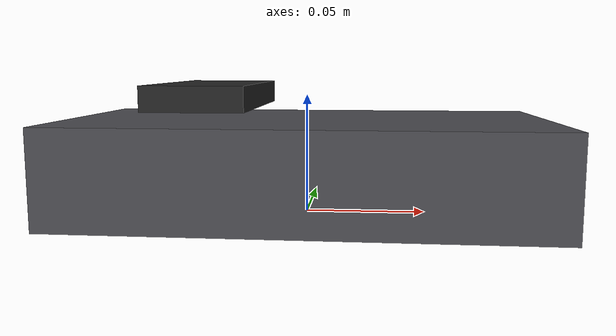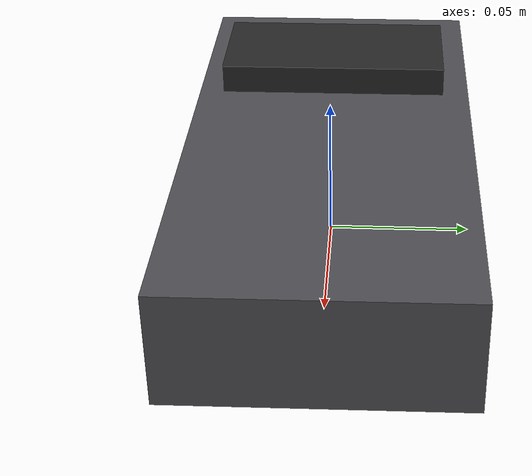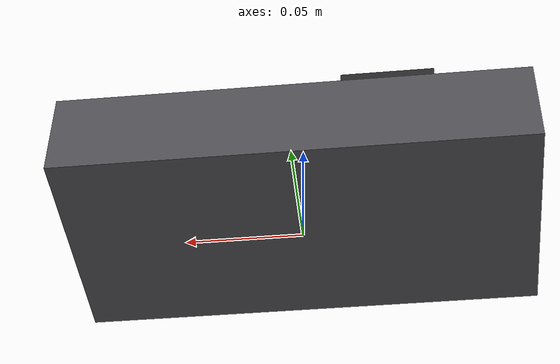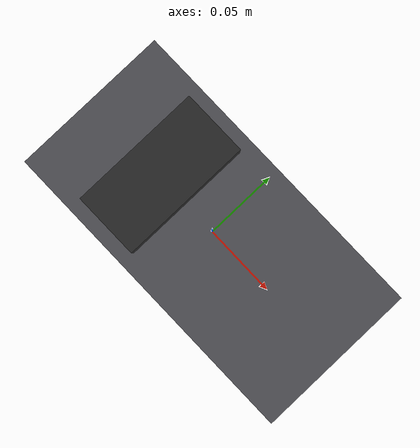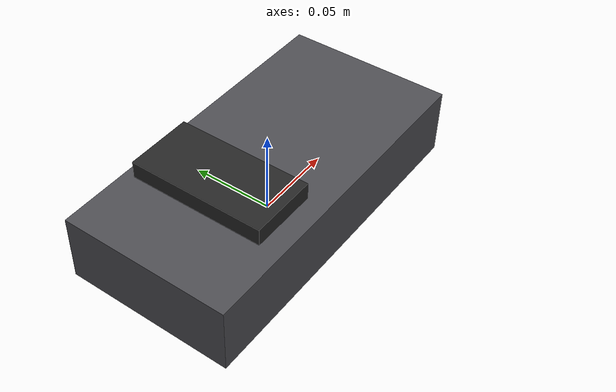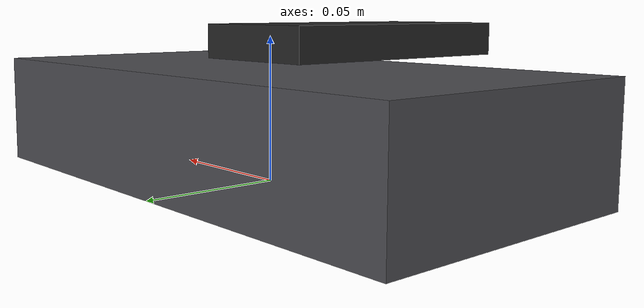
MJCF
<?xml version="1.0" encoding="utf-8"?>
<mujoco model="core_sample_splitter">
  <compiler angle="radian" autolimits="true"/>
  <default>
    <default class="body"><geom contype="1" conaffinity="1"/></default>
  </default>
  <worldbody>
    <body name="base">
      <geom type="box" size="0.10 0.05 0.02" pos="0 0 0.02" rgba="0.3 0.3 0.32 1" class="body"/>
      <body name="splitter_blade" pos="-0.06 0 0.05">
        <joint name="splitter_blade_joint" type="hinge" axis="0 1 0" range="-0.8 0" damping="0.3" frictionloss="0.3"/>
  <geom type="box" size="0.02 0.04 0.005" pos="0.02 0 0" rgba="0.15 0.15 0.15 1" class="body"/>
      </body>
    </body>
  </worldbody>
</mujoco>
